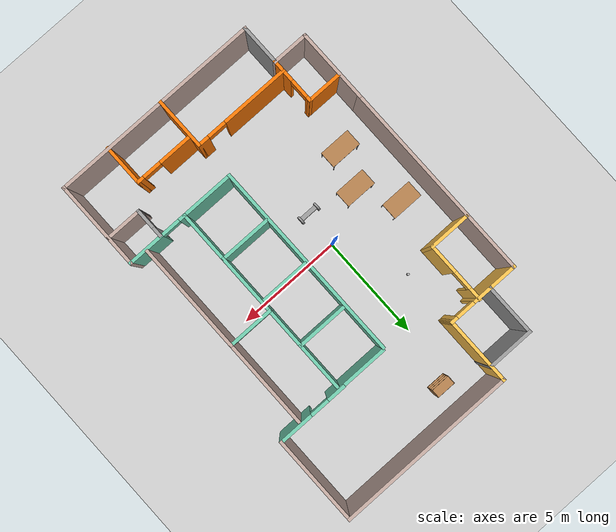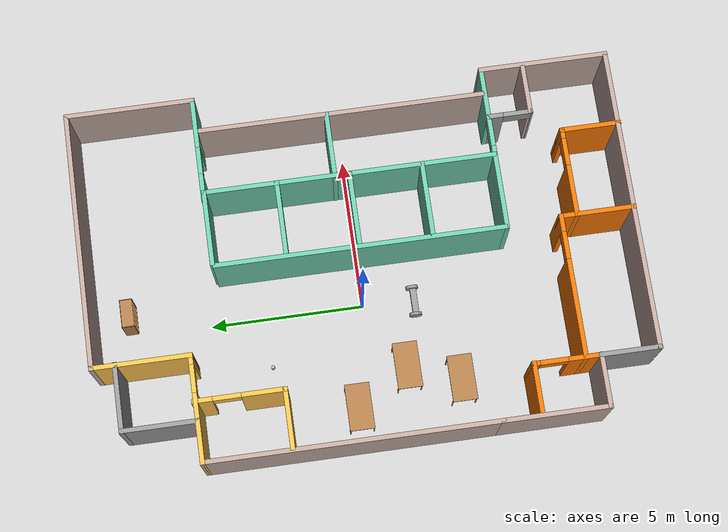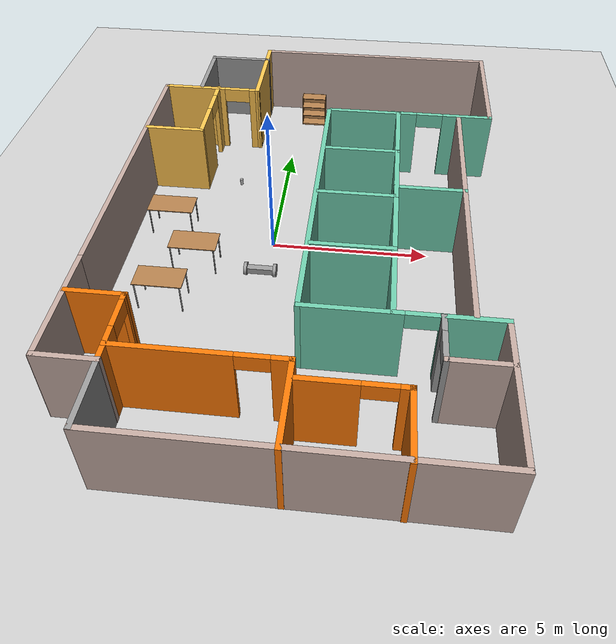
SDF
<sdf version="1.7">
 <world name="default">
  <light name="sun" type="directional">
   <pose>0 0 10 0 -0 0</pose>
   <diffuse>0.8 0.8 0.8 1</diffuse>
   <specular>0.2 0.2 0.2 1</specular>
   <attenuation>
    <range>1000</range>
    <constant>0.9</constant>
    <linear>0.01</linear>
    <quadratic>0.001</quadratic>
   </attenuation>
   <direction>-0.5 0.1 -0.9</direction>
   <spot><inner_angle>0</inner_angle><outer_angle>0</outer_angle><falloff>0</falloff></spot>
  </light>
  <model name="ground_plane">
   <static>1</static>
   <link name="link">
    <collision name="collision">
     <geometry><plane><normal>0 0 1</normal><size>100 100</size></plane></geometry>
     <surface>
      <contact><collide_bitmask>65535</collide_bitmask></contact>
      <friction><ode><mu>100</mu><mu2>50</mu2></ode></friction>
     </surface>
    </collision>
    <visual name="visual">
     <cast_shadows>0</cast_shadows>
     <geometry><plane><normal>0 0 1</normal><size>100 100</size></plane></geometry>
     <material>
      <script><uri>file://media/materials/scripts/gazebo.material</uri><name>Gazebo/Grey</name></script>
     </material>
    </visual>
   </link>
  </model>
  <gravity>0 0 -9.8</gravity>
  <magnetic_field>6e-06 2.3e-05 -4.2e-05</magnetic_field>
  <atmosphere type="adiabatic"/>
  <physics type="ode">
   <max_step_size>0.001</max_step_size>
   <real_time_factor>1</real_time_factor>
   <real_time_update_rate>1000</real_time_update_rate>
  </physics>
  <scene><ambient>0.4 0.4 0.4 1</ambient><background>0.7 0.7 0.7 1</background><shadows>1</shadows></scene>
  <audio><device>default</device></audio>
  <spherical_coordinates>
   <surface_model>EARTH_WGS84</surface_model>
   <latitude_deg>0</latitude_deg>
   <longitude_deg>0</longitude_deg>
   <elevation>0</elevation>
   <heading_deg>0</heading_deg>
  </spherical_coordinates>
  <model name="mybuilding">
   <pose>1.1462 -0.112296 0 0 -0 0</pose>
   <link name="Wall_123">
    <collision name="Wall_123_Collision">
     <geometry><box><size>5.25 0.15 2.5</size></box></geometry>
     <pose>0 0 1.25 0 -0 0</pose>
    </collision>
    <visual name="Wall_123_Visual">
     <pose>0 0 1.25 0 -0 0</pose>
     <geometry><box><size>5.25 0.15 2.5</size></box></geometry>
     <material>
      <script><uri>file://media/materials/scripts/gazebo.material</uri><name>Gazebo/Grey</name></script>
      <ambient>0.760784 0.662745 0.627451 1</ambient>
     </material>
     <meta><layer>0</layer></meta>
    </visual>
    <pose>4.79444 -2.06703 0 0 -0 1.5708</pose>
   </link>
   <link name="Wall_125">
    <collision name="Wall_125_Collision">
     <geometry><box><size>2.25 0.15 2.5</size></box></geometry>
     <pose>0 0 1.25 0 -0 0</pose>
    </collision>
    <visual name="Wall_125_Visual">
     <pose>0 0 1.25 0 -0 0</pose>
     <geometry><box><size>2.25 0.15 2.5</size></box></geometry>
     <material>
      <script><uri>file://media/materials/scripts/gazebo.material</uri><name>Gazebo/Grey</name></script>
      <ambient>0.435294 0.796078 0.67451 1</ambient>
     </material>
     <meta><layer>0</layer></meta>
    </visual>
    <pose>3.74444 0.482967 0 0 -0 3.14159</pose>
   </link>
   <link name="Wall_127">
    <collision name="Wall_127_Collision">
     <geometry><box><size>4.25 0.15 2.5</size></box></geometry>
     <pose>0 0 1.25 0 -0 0</pose>
    </collision>
    <visual name="Wall_127_Visual">
     <pose>0 0 1.25 0 -0 0</pose>
     <geometry><box><size>4.25 0.15 2.5</size></box></geometry>
     <material>
      <script><uri>file://media/materials/scripts/gazebo.material</uri><name>Gazebo/Grey</name></script>
      <ambient>0.760784 0.662745 0.627451 1</ambient>
     </material>
     <meta><layer>0</layer></meta>
    </visual>
    <pose>4.79444 2.53297 0 0 -0 1.5708</pose>
   </link>
   <link name="Wall_129">
    <collision name="Wall_129_Collision">
     <geometry><box><size>4.25 0.15 2.5</size></box></geometry>
     <pose>0 0 1.25 0 -0 0</pose>
    </collision>
    <visual name="Wall_129_Visual">
     <pose>0 0 1.25 0 -0 0</pose>
     <geometry><box><size>4.25 0.15 2.5</size></box></geometry>
     <material>
      <script><uri>file://media/materials/scripts/gazebo.material</uri><name>Gazebo/Grey</name></script>
      <ambient>0.760784 0.662745 0.627451 1</ambient>
     </material>
     <meta><layer>0</layer></meta>
    </visual>
    <pose>5.86525 6.78658 0 0 -0 1.5708</pose>
   </link>
   <link name="Wall_130">
    <collision name="Wall_130_Collision">
     <geometry><box><size>8.5 0.15 2.5</size></box></geometry>
     <pose>0 0 1.25 0 -0 0</pose>
    </collision>
    <visual name="Wall_130_Visual">
     <pose>0 0 1.25 0 -0 0</pose>
     <geometry><box><size>8.5 0.15 2.5</size></box></geometry>
     <material>
      <script><uri>file://media/materials/scripts/gazebo.material</uri><name>Gazebo/Grey</name></script>
      <ambient>0.760784 0.662745 0.627451 1</ambient>
     </material>
     <meta><layer>0</layer></meta>
    </visual>
    <pose>1.69025 8.83658 0 0 -0 3.14159</pose>
   </link>
   <link name="Wall_131">
    <collision name="Wall_131_Collision">
     <geometry><box><size>3.25 0.15 2.5</size></box></geometry>
     <pose>0 0 1.25 0 -0 0</pose>
    </collision>
    <visual name="Wall_131_Visual">
     <pose>0 0 1.25 0 -0 0</pose>
     <geometry><box><size>3.25 0.15 2.5</size></box></geometry>
     <material>
      <script><uri>file://media/materials/scripts/gazebo.material</uri><name>Gazebo/Grey</name></script>
      <ambient>1 0.764706 0.305882 1</ambient>
     </material>
     <meta><layer>0</layer></meta>
    </visual>
    <pose>-2.48475 7.28658 0 0 -0 -1.5708</pose>
   </link>
   <link name="Wall_136">
    <collision name="Wall_136_Collision">
     <geometry><box><size>9.49958 0.15 2.5</size></box></geometry>
     <pose>0 0 1.25 0 -0 0</pose>
    </collision>
    <visual name="Wall_136_Visual">
     <pose>0 0 1.25 0 -0 0</pose>
     <geometry><box><size>9.49958 0.15 2.5</size></box></geometry>
     <material>
      <script><uri>file://media/materials/scripts/gazebo.material</uri><name>Gazebo/Grey</name></script>
      <ambient>0.760784 0.662745 0.627451 1</ambient>
     </material>
     <meta><layer>0</layer></meta>
    </visual>
    <pose>-5.86518 1.06458 0 0 -0 1.5708</pose>
   </link>
   <link name="Wall_138">
    <pose>-4.17497 5.73808 0 0 -0 3.14071</pose>
    <visual name="Wall_138_Visual_0">
     <pose>-1.57735 0 1.25 0 -0 0</pose>
     <geometry><box><size>0.375734 0.15 2.5</size></box></geometry>
     <material>
      <script><uri>file://media/materials/scripts/gazebo.material</uri><name>Gazebo/Grey</name></script>
      <ambient>1 0.764706 0.305882 1</ambient>
     </material>
     <meta><layer>0</layer></meta>
    </visual>
    <collision name="Wall_138_Collision_0">
     <geometry><box><size>0.375734 0.15 2.5</size></box></geometry>
     <pose>-1.57735 0 1.25 0 -0 0</pose>
    </collision>
    <visual name="Wall_138_Visual_1">
     <pose>0.637867 0 1.25 0 -0 0</pose>
     <geometry><box><size>2.2547 0.15 2.5</size></box></geometry>
     <material>
      <script><uri>file://media/materials/scripts/gazebo.material</uri><name>Gazebo/Grey</name></script>
      <ambient>1 0.764706 0.305882 1</ambient>
     </material>
     <meta><layer>0</layer></meta>
    </visual>
    <collision name="Wall_138_Collision_1">
     <geometry><box><size>2.2547 0.15 2.5</size></box></geometry>
     <pose>0.637867 0 1.25 0 -0 0</pose>
    </collision>
    <visual name="Wall_138_Visual_2">
     <pose>-0.939484 0 2.25 0 -0 0</pose>
     <geometry><box><size>0.9 0.15 0.5</size></box></geometry>
     <material>
      <script><uri>file://media/materials/scripts/gazebo.material</uri><name>Gazebo/Grey</name></script>
      <ambient>1 0.764706 0.305882 1</ambient>
     </material>
     <meta><layer>0</layer></meta>
    </visual>
    <collision name="Wall_138_Collision_2">
     <geometry><box><size>0.9 0.15 0.5</size></box></geometry>
     <pose>-0.939484 0 2.25 0 -0 0</pose>
    </collision>
   </link>
   <link name="Wall_141">
    <collision name="Wall_141_Collision">
     <geometry><box><size>2.25 0.15 2.5</size></box></geometry>
     <pose>0 0 1.25 0 -0 0</pose>
    </collision>
    <visual name="Wall_141_Visual">
     <pose>0 0 1.25 0 -0 0</pose>
     <geometry><box><size>2.25 0.15 2.5</size></box></geometry>
     <material>
      <script><uri>file://media/materials/scripts/gazebo.material</uri><name>Gazebo/Grey</name></script>
      <ambient>1 1 1 1</ambient>
     </material>
     <meta><layer>0</layer></meta>
    </visual>
    <pose>-3.51661 8.10127 0 0 -0 3.14159</pose>
   </link>
   <link name="Wall_142">
    <collision name="Wall_142_Collision">
     <geometry><box><size>2.5 0.15 2.5</size></box></geometry>
     <pose>0 0 1.25 0 -0 0</pose>
    </collision>
    <visual name="Wall_142_Visual">
     <pose>0 0 1.25 0 -0 0</pose>
     <geometry><box><size>2.5 0.15 2.5</size></box></geometry>
     <material>
      <script><uri>file://media/materials/scripts/gazebo.material</uri><name>Gazebo/Grey</name></script>
      <ambient>1 1 1 1</ambient>
     </material>
     <meta><layer>0</layer></meta>
    </visual>
    <pose>-4.56661 6.92627 0 0 -0 -1.5708</pose>
   </link>
   <link name="Wall_144">
    <pose>-3.95132 4.36352 0 0 -0 -1.5708</pose>
    <visual name="Wall_144_Visual_0">
     <pose>-1.17446 0 1.25 0 -0 0</pose>
     <geometry><box><size>0.651089 0.15 2.5</size></box></geometry>
     <material>
      <script><uri>file://media/materials/scripts/gazebo.material</uri><name>Gazebo/Grey</name></script>
      <ambient>1 0.764706 0.305882 1</ambient>
     </material>
     <meta><layer>0</layer></meta>
    </visual>
    <collision name="Wall_144_Collision_0">
     <geometry><box><size>0.651089 0.15 2.5</size></box></geometry>
     <pose>-1.17446 0 1.25 0 -0 0</pose>
    </collision>
    <visual name="Wall_144_Visual_1">
     <pose>0.775545 0 1.25 0 -0 0</pose>
     <geometry><box><size>1.44891 0.15 2.5</size></box></geometry>
     <material>
      <script><uri>file://media/materials/scripts/gazebo.material</uri><name>Gazebo/Grey</name></script>
      <ambient>1 0.764706 0.305882 1</ambient>
     </material>
     <meta><layer>0</layer></meta>
    </visual>
    <collision name="Wall_144_Collision_1">
     <geometry><box><size>1.44891 0.15 2.5</size></box></geometry>
     <pose>0.775545 0 1.25 0 -0 0</pose>
    </collision>
    <visual name="Wall_144_Visual_2">
     <pose>-0.398911 0 2.25 0 -0 0</pose>
     <geometry><box><size>0.9 0.15 0.5</size></box></geometry>
     <material>
      <script><uri>file://media/materials/scripts/gazebo.material</uri><name>Gazebo/Grey</name></script>
      <ambient>1 0.764706 0.305882 1</ambient>
     </material>
     <meta><layer>0</layer></meta>
    </visual>
    <collision name="Wall_144_Collision_2">
     <geometry><box><size>0.9 0.15 0.5</size></box></geometry>
     <pose>-0.398911 0 2.25 0 -0 0</pose>
    </collision>
   </link>
   <link name="Wall_145">
    <collision name="Wall_145_Collision">
     <geometry><box><size>2 0.15 2.5</size></box></geometry>
     <pose>0 0 1.25 0 -0 0</pose>
    </collision>
    <visual name="Wall_145_Visual">
     <pose>0 0 1.25 0 -0 0</pose>
     <geometry><box><size>2 0.15 2.5</size></box></geometry>
     <material>
      <script><uri>file://media/materials/scripts/gazebo.material</uri><name>Gazebo/Grey</name></script>
      <ambient>1 0.764706 0.305882 1</ambient>
     </material>
     <meta><layer>0</layer></meta>
    </visual>
    <pose>-4.87632 2.93852 0 0 -0 3.14159</pose>
   </link>
   <link name="Wall_27">
    <collision name="Wall_27_Collision">
     <geometry><box><size>1.9915 0.15 2.5</size></box></geometry>
     <pose>0 0 1.25 0 -0 0</pose>
    </collision>
    <visual name="Wall_27_Visual">
     <pose>0 0 1.25 0 -0 0</pose>
     <geometry><box><size>1.9915 0.15 2.5</size></box></geometry>
     <material>
      <script><uri>file://media/materials/scripts/gazebo.material</uri><name>Gazebo/Grey</name></script>
      <ambient>1 1 1 1</ambient>
     </material>
     <meta><layer>0</layer></meta>
    </visual>
    <pose>-4.23475 -7.88117 0 0 -0 -1.5708</pose>
   </link>
   <link name="Wall_36">
    <pose>-4.23475 -5.89742 0 0 -0 1.5708</pose>
    <visual name="Wall_36_Visual_0">
     <pose>-0.580632 0 1.25 0 -0 0</pose>
     <geometry><box><size>1.11474 0.15 2.5</size></box></geometry>
     <material>
      <script><uri>file://media/materials/scripts/gazebo.material</uri><name>Gazebo/Grey</name></script>
      <ambient>0.996078 0.47451 0.0196078 1</ambient>
     </material>
     <meta><layer>0</layer></meta>
    </visual>
    <collision name="Wall_36_Collision_0">
     <geometry><box><size>1.11474 0.15 2.5</size></box></geometry>
     <pose>-0.580632 0 1.25 0 -0 0</pose>
    </collision>
    <visual name="Wall_36_Visual_1">
     <pose>1.00737 0 1.25 0 -0 0</pose>
     <geometry><box><size>0.261265 0.15 2.5</size></box></geometry>
     <material>
      <script><uri>file://media/materials/scripts/gazebo.material</uri><name>Gazebo/Grey</name></script>
      <ambient>0.996078 0.47451 0.0196078 1</ambient>
     </material>
     <meta><layer>0</layer></meta>
    </visual>
    <collision name="Wall_36_Collision_1">
     <geometry><box><size>0.261265 0.15 2.5</size></box></geometry>
     <pose>1.00737 0 1.25 0 -0 0</pose>
    </collision>
    <visual name="Wall_36_Visual_2">
     <pose>0.426735 0 2.25 0 -0 0</pose>
     <geometry><box><size>0.9 0.15 0.5</size></box></geometry>
     <material>
      <script><uri>file://media/materials/scripts/gazebo.material</uri><name>Gazebo/Grey</name></script>
      <ambient>0.996078 0.47451 0.0196078 1</ambient>
     </material>
     <meta><layer>0</layer></meta>
    </visual>
    <collision name="Wall_36_Collision_2">
     <geometry><box><size>0.9 0.15 0.5</size></box></geometry>
     <pose>0.426735 0 2.25 0 -0 0</pose>
    </collision>
   </link>
   <link name="Wall_41">
    <collision name="Wall_41_Collision">
     <geometry><box><size>1.75 0.15 2.5</size></box></geometry>
     <pose>0 0 1.25 0 -0 0</pose>
    </collision>
    <visual name="Wall_41_Visual">
     <pose>0 0 1.25 0 -0 0</pose>
     <geometry><box><size>1.75 0.15 2.5</size></box></geometry>
     <material>
      <script><uri>file://media/materials/scripts/gazebo.material</uri><name>Gazebo/Grey</name></script>
      <ambient>0.996078 0.47451 0.0196078 1</ambient>
     </material>
     <meta><layer>0</layer></meta>
    </visual>
    <pose>-5.02325 -4.83442 0 0 -0 3.14159</pose>
   </link>
   <link name="Wall_43">
    <collision name="Wall_43_Collision">
     <geometry><box><size>10 0.15 2.5</size></box></geometry>
     <pose>0 0 1.25 0 -0 0</pose>
    </collision>
    <visual name="Wall_43_Visual">
     <pose>0 0 1.25 0 -0 0</pose>
     <geometry><box><size>10 0.15 2.5</size></box></geometry>
     <material>
      <script><uri>file://media/materials/scripts/gazebo.material</uri><name>Gazebo/Grey</name></script>
      <ambient>0.760784 0.662745 0.627451 1</ambient>
     </material>
     <meta><layer>0</layer></meta>
    </visual>
    <pose>0.690251 -8.81342 0 0 -0 0</pose>
   </link>
   <link name="Wall_47">
    <pose>-1.93659 -6.46908 0 0 -0 0</pose>
    <visual name="Wall_47_Visual_0">
     <pose>-0.7455 0 1.25 0 -0 0</pose>
     <geometry><box><size>3.259 0.15 2.5</size></box></geometry>
     <material>
      <script><uri>file://media/materials/scripts/gazebo.material</uri><name>Gazebo/Grey</name></script>
      <ambient>0.996078 0.47451 0.0196078 1</ambient>
     </material>
     <meta><layer>0</layer></meta>
    </visual>
    <collision name="Wall_47_Collision_0">
     <geometry><box><size>3.259 0.15 2.5</size></box></geometry>
     <pose>-0.7455 0 1.25 0 -0 0</pose>
    </collision>
    <visual name="Wall_47_Visual_1">
     <pose>2.0795 0 1.25 0 -0 0</pose>
     <geometry><box><size>0.591 0.15 2.5</size></box></geometry>
     <material>
      <script><uri>file://media/materials/scripts/gazebo.material</uri><name>Gazebo/Grey</name></script>
      <ambient>0.996078 0.47451 0.0196078 1</ambient>
     </material>
     <meta><layer>0</layer></meta>
    </visual>
    <collision name="Wall_47_Collision_1">
     <geometry><box><size>0.591 0.15 2.5</size></box></geometry>
     <pose>2.0795 0 1.25 0 -0 0</pose>
    </collision>
    <visual name="Wall_47_Visual_2">
     <pose>1.334 0 2.25 0 -0 0</pose>
     <geometry><box><size>0.9 0.15 0.5</size></box></geometry>
     <material>
      <script><uri>file://media/materials/scripts/gazebo.material</uri><name>Gazebo/Grey</name></script>
      <ambient>0.996078 0.47451 0.0196078 1</ambient>
     </material>
     <meta><layer>0</layer></meta>
    </visual>
    <collision name="Wall_47_Collision_2">
     <geometry><box><size>0.9 0.15 0.5</size></box></geometry>
     <pose>1.334 0 2.25 0 -0 0</pose>
    </collision>
   </link>
   <link name="Wall_48">
    <collision name="Wall_48_Collision">
     <geometry><box><size>2.5 0.15 2.5</size></box></geometry>
     <pose>0 0 1.25 0 -0 0</pose>
    </collision>
    <visual name="Wall_48_Visual">
     <pose>0 0 1.25 0 -0 0</pose>
     <geometry><box><size>2.5 0.15 2.5</size></box></geometry>
     <material>
      <script><uri>file://media/materials/scripts/gazebo.material</uri><name>Gazebo/Grey</name></script>
      <ambient>0.996078 0.47451 0.0196078 1</ambient>
     </material>
     <meta><layer>0</layer></meta>
    </visual>
    <pose>0.36341 -7.64408 0 0 -0 -1.5708</pose>
   </link>
   <link name="Wall_52">
    <pose>1.78841 -6.98658 0 0 -0 0</pose>
    <visual name="Wall_52_Visual_0">
     <pose>-0.63525 0 1.25 0 -0 0</pose>
     <geometry><box><size>1.7295 0.15 2.5</size></box></geometry>
     <material>
      <script><uri>file://media/materials/scripts/gazebo.material</uri><name>Gazebo/Grey</name></script>
      <ambient>0.996078 0.47451 0.0196078 1</ambient>
     </material>
     <meta><layer>0</layer></meta>
    </visual>
    <collision name="Wall_52_Collision_0">
     <geometry><box><size>1.7295 0.15 2.5</size></box></geometry>
     <pose>-0.63525 0 1.25 0 -0 0</pose>
    </collision>
    <visual name="Wall_52_Visual_1">
     <pose>1.31475 0 1.25 0 -0 0</pose>
     <geometry><box><size>0.3705 0.15 2.5</size></box></geometry>
     <material>
      <script><uri>file://media/materials/scripts/gazebo.material</uri><name>Gazebo/Grey</name></script>
      <ambient>0.996078 0.47451 0.0196078 1</ambient>
     </material>
     <meta><layer>0</layer></meta>
    </visual>
    <collision name="Wall_52_Collision_1">
     <geometry><box><size>0.3705 0.15 2.5</size></box></geometry>
     <pose>1.31475 0 1.25 0 -0 0</pose>
    </collision>
    <visual name="Wall_52_Visual_2">
     <pose>0.6795 0 2.25 0 -0 0</pose>
     <geometry><box><size>0.9 0.15 0.5</size></box></geometry>
     <material>
      <script><uri>file://media/materials/scripts/gazebo.material</uri><name>Gazebo/Grey</name></script>
      <ambient>0.996078 0.47451 0.0196078 1</ambient>
     </material>
     <meta><layer>0</layer></meta>
    </visual>
    <collision name="Wall_52_Collision_2">
     <geometry><box><size>0.9 0.15 0.5</size></box></geometry>
     <pose>0.6795 0 2.25 0 -0 0</pose>
    </collision>
   </link>
   <link name="Wall_53">
    <collision name="Wall_53_Collision">
     <geometry><box><size>2 0.15 2.5</size></box></geometry>
     <pose>0 0 1.25 0 -0 0</pose>
    </collision>
    <visual name="Wall_53_Visual">
     <pose>0 0 1.25 0 -0 0</pose>
     <geometry><box><size>2 0.15 2.5</size></box></geometry>
     <material>
      <script><uri>file://media/materials/scripts/gazebo.material</uri><name>Gazebo/Grey</name></script>
      <ambient>0.996078 0.47451 0.0196078 1</ambient>
     </material>
     <meta><layer>0</layer></meta>
    </visual>
    <pose>3.21341 -7.91158 0 0 -0 -1.5708</pose>
   </link>
   <link name="Wall_55">
    <collision name="Wall_55_Collision">
     <geometry><box><size>4.25 0.15 2.5</size></box></geometry>
     <pose>0 0 1.25 0 -0 0</pose>
    </collision>
    <visual name="Wall_55_Visual">
     <pose>0 0 1.25 0 -0 0</pose>
     <geometry><box><size>4.25 0.15 2.5</size></box></geometry>
     <material>
      <script><uri>file://media/materials/scripts/gazebo.material</uri><name>Gazebo/Grey</name></script>
      <ambient>0.760784 0.662745 0.627451 1</ambient>
     </material>
     <meta><layer>0</layer></meta>
    </visual>
    <pose>5.61525 -6.76342 0 0 -0 1.5708</pose>
   </link>
   <link name="Wall_56">
    <pose>2.94025 -4.71342 0 0 -0 3.14159</pose>
    <visual name="Wall_56_Visual_0">
     <pose>-1.85364 0 1.25 0 -0 0</pose>
     <geometry><box><size>1.79272 0.15 2.5</size></box></geometry>
     <material>
      <script><uri>file://media/materials/scripts/gazebo.material</uri><name>Gazebo/Grey</name></script>
      <ambient>0.435294 0.796078 0.67451 1</ambient>
     </material>
     <meta><layer>0</layer></meta>
    </visual>
    <collision name="Wall_56_Collision_0">
     <geometry><box><size>1.79272 0.15 2.5</size></box></geometry>
     <pose>-1.85364 0 1.25 0 -0 0</pose>
    </collision>
    <visual name="Wall_56_Visual_1">
     <pose>1.34636 0 1.25 0 -0 0</pose>
     <geometry><box><size>2.80728 0.15 2.5</size></box></geometry>
     <material>
      <script><uri>file://media/materials/scripts/gazebo.material</uri><name>Gazebo/Grey</name></script>
      <ambient>0.435294 0.796078 0.67451 1</ambient>
     </material>
     <meta><layer>0</layer></meta>
    </visual>
    <collision name="Wall_56_Collision_1">
     <geometry><box><size>2.80728 0.15 2.5</size></box></geometry>
     <pose>1.34636 0 1.25 0 -0 0</pose>
    </collision>
    <visual name="Wall_56_Visual_2">
     <pose>-0.507283 0 2.25 0 -0 0</pose>
     <geometry><box><size>0.9 0.15 0.5</size></box></geometry>
     <material>
      <script><uri>file://media/materials/scripts/gazebo.material</uri><name>Gazebo/Grey</name></script>
      <ambient>0.435294 0.796078 0.67451 1</ambient>
     </material>
     <meta><layer>0</layer></meta>
    </visual>
    <collision name="Wall_56_Collision_2">
     <geometry><box><size>0.9 0.15 0.5</size></box></geometry>
     <pose>-0.507283 0 2.25 0 -0 0</pose>
    </collision>
   </link>
   <link name="Wall_58">
    <collision name="Wall_58_Collision">
     <geometry><box><size>1.75 0.15 2.5</size></box></geometry>
     <pose>0 0 1.25 0 -0 0</pose>
    </collision>
    <visual name="Wall_58_Visual">
     <pose>0 0 1.25 0 -0 0</pose>
     <geometry><box><size>1.75 0.15 2.5</size></box></geometry>
     <material>
      <script><uri>file://media/materials/scripts/gazebo.material</uri><name>Gazebo/Grey</name></script>
      <ambient>0.760784 0.662745 0.627451 1</ambient>
     </material>
     <meta><layer>0</layer></meta>
    </visual>
    <pose>4.79591 -6.07808 0 0 -0 3.14159</pose>
   </link>
   <link name="Wall_59">
    <pose>3.98441 -5.40308 0 0 -0 1.5708</pose>
    <visual name="Wall_59_Visual_0">
     <pose>-0.719 0 1.25 0 -0 0</pose>
     <geometry><box><size>0.062 0.15 2.5</size></box></geometry>
     <material>
      <script><uri>file://media/materials/scripts/gazebo.material</uri><name>Gazebo/Grey</name></script>
      <ambient>1 1 1 1</ambient>
     </material>
     <meta><layer>0</layer></meta>
    </visual>
    <collision name="Wall_59_Collision_0">
     <geometry><box><size>0.062 0.15 2.5</size></box></geometry>
     <pose>-0.719 0 1.25 0 -0 0</pose>
    </collision>
    <visual name="Wall_59_Visual_1">
     <pose>0.481 0 1.25 0 -0 0</pose>
     <geometry><box><size>0.538 0.15 2.5</size></box></geometry>
     <material>
      <script><uri>file://media/materials/scripts/gazebo.material</uri><name>Gazebo/Grey</name></script>
      <ambient>1 1 1 1</ambient>
     </material>
     <meta><layer>0</layer></meta>
    </visual>
    <collision name="Wall_59_Collision_1">
     <geometry><box><size>0.538 0.15 2.5</size></box></geometry>
     <pose>0.481 0 1.25 0 -0 0</pose>
    </collision>
    <visual name="Wall_59_Visual_2">
     <pose>-0.238 0 2.25 0 -0 0</pose>
     <geometry><box><size>0.9 0.15 0.5</size></box></geometry>
     <material>
      <script><uri>file://media/materials/scripts/gazebo.material</uri><name>Gazebo/Grey</name></script>
      <ambient>1 1 1 1</ambient>
     </material>
     <meta><layer>0</layer></meta>
    </visual>
    <collision name="Wall_59_Collision_2">
     <geometry><box><size>0.9 0.15 0.5</size></box></geometry>
     <pose>-0.238 0 2.25 0 -0 0</pose>
    </collision>
   </link>
   <link name="Wall_6">
    <collision name="Wall_6_Collision">
     <geometry><box><size>3.5 0.15 2.5</size></box></geometry>
     <pose>0 0 1.25 0 -0 0</pose>
    </collision>
    <visual name="Wall_6_Visual">
     <pose>0 0 1.25 0 -0 0</pose>
     <geometry><box><size>3.5 0.15 2.5</size></box></geometry>
     <material>
      <script><uri>file://media/materials/scripts/gazebo.material</uri><name>Gazebo/Grey</name></script>
      <ambient>0.760784 0.662745 0.627451 1</ambient>
     </material>
     <meta><layer>0</layer></meta>
    </visual>
    <pose>-5.86518 -5.28542 0 0 -0 -1.5708</pose>
   </link>
   <link name="Wall_73">
    <collision name="Wall_73_Collision">
     <geometry><box><size>2.5 0.15 2.5</size></box></geometry>
     <pose>0 0 1.25 0 -0 0</pose>
    </collision>
    <visual name="Wall_73_Visual">
     <pose>0 0 1.25 0 -0 0</pose>
     <geometry><box><size>2.5 0.15 2.5</size></box></geometry>
     <material>
      <script><uri>file://media/materials/scripts/gazebo.material</uri><name>Gazebo/Grey</name></script>
      <ambient>0.435294 0.796078 0.67451 1</ambient>
     </material>
     <meta><layer>0</layer></meta>
    </visual>
    <pose>2.70558 -3.51332 0 0 -0 1.5708</pose>
   </link>
   <link name="Wall_74">
    <collision name="Wall_74_Collision">
     <geometry><box><size>2.5 0.15 2.5</size></box></geometry>
     <pose>0 0 1.25 0 -0 0</pose>
    </collision>
    <visual name="Wall_74_Visual">
     <pose>0 0 1.25 0 -0 0</pose>
     <geometry><box><size>2.5 0.15 2.5</size></box></geometry>
     <material>
      <script><uri>file://media/materials/scripts/gazebo.material</uri><name>Gazebo/Grey</name></script>
      <ambient>0.435294 0.796078 0.67451 1</ambient>
     </material>
     <meta><layer>0</layer></meta>
    </visual>
    <pose>1.53058 -2.33832 0 0 -0 3.14159</pose>
   </link>
   <link name="Wall_76">
    <collision name="Wall_76_Collision">
     <geometry><box><size>2.5 0.15 2.5</size></box></geometry>
     <pose>0 0 1.25 0 -0 0</pose>
    </collision>
    <visual name="Wall_76_Visual">
     <pose>0 0 1.25 0 -0 0</pose>
     <geometry><box><size>2.5 0.15 2.5</size></box></geometry>
     <material>
      <script><uri>file://media/materials/scripts/gazebo.material</uri><name>Gazebo/Grey</name></script>
      <ambient>0.435294 0.796078 0.67451 1</ambient>
     </material>
     <meta><layer>0</layer></meta>
    </visual>
    <pose>2.70558 -1.16332 0 0 -0 1.5708</pose>
   </link>
   <link name="Wall_77">
    <collision name="Wall_77_Collision">
     <geometry><box><size>2.5 0.15 2.5</size></box></geometry>
     <pose>0 0 1.25 0 -0 0</pose>
    </collision>
    <visual name="Wall_77_Visual">
     <pose>0 0 1.25 0 -0 0</pose>
     <geometry><box><size>2.5 0.15 2.5</size></box></geometry>
     <material>
      <script><uri>file://media/materials/scripts/gazebo.material</uri><name>Gazebo/Grey</name></script>
      <ambient>0.435294 0.796078 0.67451 1</ambient>
     </material>
     <meta><layer>0</layer></meta>
    </visual>
    <pose>1.53058 0.011678 0 0 -0 3.14159</pose>
   </link>
   <link name="Wall_79">
    <collision name="Wall_79_Collision">
     <geometry><box><size>2.5 0.15 2.5</size></box></geometry>
     <pose>0 0 1.25 0 -0 0</pose>
    </collision>
    <visual name="Wall_79_Visual">
     <pose>0 0 1.25 0 -0 0</pose>
     <geometry><box><size>2.5 0.15 2.5</size></box></geometry>
     <material>
      <script><uri>file://media/materials/scripts/gazebo.material</uri><name>Gazebo/Grey</name></script>
      <ambient>0.435294 0.796078 0.67451 1</ambient>
     </material>
     <meta><layer>0</layer></meta>
    </visual>
    <pose>2.70558 1.18668 0 0 -0 1.5708</pose>
   </link>
   <link name="Wall_8">
    <collision name="Wall_8_Collision">
     <geometry><box><size>1.78043 0.15 2.5</size></box></geometry>
     <pose>0 0 1.25 0 -0 0</pose>
    </collision>
    <visual name="Wall_8_Visual">
     <pose>0 0 1.25 0 -0 0</pose>
     <geometry><box><size>1.78043 0.15 2.5</size></box></geometry>
     <material>
      <script><uri>file://media/materials/scripts/gazebo.material</uri><name>Gazebo/Grey</name></script>
      <ambient>0.760784 0.662745 0.627451 1</ambient>
     </material>
     <meta><layer>0</layer></meta>
    </visual>
    <pose>-5.04127 -6.96042 0 0 -0 0</pose>
   </link>
   <link name="Wall_82">
    <collision name="Wall_82_Collision">
     <geometry><box><size>2.5 0.15 2.5</size></box></geometry>
     <pose>0 0 1.25 0 -0 0</pose>
    </collision>
    <visual name="Wall_82_Visual">
     <pose>0 0 1.25 0 -0 0</pose>
     <geometry><box><size>2.5 0.15 2.5</size></box></geometry>
     <material>
      <script><uri>file://media/materials/scripts/gazebo.material</uri><name>Gazebo/Grey</name></script>
      <ambient>0.435294 0.796078 0.67451 1</ambient>
     </material>
     <meta><layer>0</layer></meta>
    </visual>
    <pose>1.53058 2.36168 0 0 -0 3.14159</pose>
   </link>
   <link name="Wall_85">
    <collision name="Wall_85_Collision">
     <geometry><box><size>2.5 0.15 2.5</size></box></geometry>
     <pose>0 0 1.25 0 -0 0</pose>
    </collision>
    <visual name="Wall_85_Visual">
     <pose>0 0 1.25 0 -0 0</pose>
     <geometry><box><size>2.5 0.15 2.5</size></box></geometry>
     <material>
      <script><uri>file://media/materials/scripts/gazebo.material</uri><name>Gazebo/Grey</name></script>
      <ambient>0.435294 0.796078 0.67451 1</ambient>
     </material>
     <meta><layer>0</layer></meta>
    </visual>
    <pose>2.70558 3.53668 0 0 -0 1.5708</pose>
   </link>
   <link name="Wall_86">
    <collision name="Wall_86_Collision">
     <geometry><box><size>2.5 0.15 2.5</size></box></geometry>
     <pose>0 0 1.25 0 -0 0</pose>
    </collision>
    <visual name="Wall_86_Visual">
     <pose>0 0 1.25 0 -0 0</pose>
     <geometry><box><size>2.5 0.15 2.5</size></box></geometry>
     <material>
      <script><uri>file://media/materials/scripts/gazebo.material</uri><name>Gazebo/Grey</name></script>
      <ambient>0.435294 0.796078 0.67451 1</ambient>
     </material>
     <meta><layer>0</layer></meta>
    </visual>
    <pose>1.53058 4.71168 0 0 -0 3.14159</pose>
   </link>
   <link name="Wall_88">
    <collision name="Wall_88_Collision">
     <geometry><box><size>9.5 0.15 2.5</size></box></geometry>
     <pose>0 0 1.25 0 -0 0</pose>
    </collision>
    <visual name="Wall_88_Visual">
     <pose>0 0 1.25 0 -0 0</pose>
     <geometry><box><size>9.5 0.15 2.5</size></box></geometry>
     <material>
      <script><uri>file://media/materials/scripts/gazebo.material</uri><name>Gazebo/Grey</name></script>
      <ambient>0.435294 0.796078 0.67451 1</ambient>
     </material>
     <meta><layer>0</layer></meta>
    </visual>
    <pose>0.265251 -0.038418 0 0 -0 1.5708</pose>
   </link>
   <link name="Wall_93">
    <pose>4.19025 4.73658 0 0 -0 3.14159</pose>
    <visual name="Wall_93_Visual_0">
     <pose>-0.901489 0 1.25 0 -0 0</pose>
     <geometry><box><size>1.69702 0.15 2.5</size></box></geometry>
     <material>
      <script><uri>file://media/materials/scripts/gazebo.material</uri><name>Gazebo/Grey</name></script>
      <ambient>0.435294 0.796078 0.67451 1</ambient>
     </material>
     <meta><layer>0</layer></meta>
    </visual>
    <collision name="Wall_93_Collision_0">
     <geometry><box><size>1.69702 0.15 2.5</size></box></geometry>
     <pose>-0.901489 0 1.25 0 -0 0</pose>
    </collision>
    <visual name="Wall_93_Visual_1">
     <pose>1.29851 0 1.25 0 -0 0</pose>
     <geometry><box><size>0.902978 0.15 2.5</size></box></geometry>
     <material>
      <script><uri>file://media/materials/scripts/gazebo.material</uri><name>Gazebo/Grey</name></script>
      <ambient>0.435294 0.796078 0.67451 1</ambient>
     </material>
     <meta><layer>0</layer></meta>
    </visual>
    <collision name="Wall_93_Collision_1">
     <geometry><box><size>0.902978 0.15 2.5</size></box></geometry>
     <pose>1.29851 0 1.25 0 -0 0</pose>
    </collision>
    <visual name="Wall_93_Visual_2">
     <pose>0.397022 0 2.25 0 -0 0</pose>
     <geometry><box><size>0.9 0.15 0.5</size></box></geometry>
     <material>
      <script><uri>file://media/materials/scripts/gazebo.material</uri><name>Gazebo/Grey</name></script>
      <ambient>0.435294 0.796078 0.67451 1</ambient>
     </material>
     <meta><layer>0</layer></meta>
    </visual>
    <collision name="Wall_93_Collision_2">
     <geometry><box><size>0.9 0.15 0.5</size></box></geometry>
     <pose>0.397022 0 2.25 0 -0 0</pose>
    </collision>
   </link>
   <static>1</static>
  </model>
  <model name="table">
   <static>1</static>
   <link name="link">
    <collision name="surface">
     <pose>0 0 1 0 -0 0</pose>
     <geometry><box><size>1.5 0.8 0.03</size></box></geometry>
     <surface><friction><ode><mu>0.6</mu><mu2>0.6</mu2></ode></friction></surface>
    </collision>
    <visual name="visual1">
     <pose>0 0 1 0 -0 0</pose>
     <geometry><box><size>1.5 0.8 0.03</size></box></geometry>
     <material>
      <script><uri>file://media/materials/scripts/gazebo.material</uri><name>Gazebo/Wood</name></script>
     </material>
    </visual>
    <collision name="front_left_leg">
     <pose>0.68 0.38 0.5 0 -0 0</pose>
     <geometry><cylinder><radius>0.02</radius><length>1</length></cylinder></geometry>
    </collision>
    <visual name="front_left_leg">
     <pose>0.68 0.38 0.5 0 -0 0</pose>
     <geometry><cylinder><radius>0.02</radius><length>1</length></cylinder></geometry>
     <material>
      <script><uri>file://media/materials/scripts/gazebo.material</uri><name>Gazebo/Grey</name></script>
     </material>
    </visual>
    <collision name="front_right_leg">
     <pose>0.68 -0.38 0.5 0 -0 0</pose>
     <geometry><cylinder><radius>0.02</radius><length>1</length></cylinder></geometry>
    </collision>
    <visual name="front_right_leg">
     <pose>0.68 -0.38 0.5 0 -0 0</pose>
     <geometry><cylinder><radius>0.02</radius><length>1</length></cylinder></geometry>
     <material>
      <script><uri>file://media/materials/scripts/gazebo.material</uri><name>Gazebo/Grey</name></script>
     </material>
    </visual>
    <collision name="back_right_leg">
     <pose>-0.68 -0.38 0.5 0 -0 0</pose>
     <geometry><cylinder><radius>0.02</radius><length>1</length></cylinder></geometry>
    </collision>
    <visual name="back_right_leg">
     <pose>-0.68 -0.38 0.5 0 -0 0</pose>
     <geometry><cylinder><radius>0.02</radius><length>1</length></cylinder></geometry>
     <material>
      <script><uri>file://media/materials/scripts/gazebo.material</uri><name>Gazebo/Grey</name></script>
     </material>
    </visual>
    <collision name="back_left_leg">
     <pose>-0.68 0.38 0.5 0 -0 0</pose>
     <geometry><cylinder><radius>0.02</radius><length>1</length></cylinder></geometry>
    </collision>
    <visual name="back_left_leg">
     <pose>-0.68 0.38 0.5 0 -0 0</pose>
     <geometry><cylinder><radius>0.02</radius><length>1</length></cylinder></geometry>
     <material>
      <script><uri>file://media/materials/scripts/gazebo.material</uri><name>Gazebo/Grey</name></script>
     </material>
    </visual>
   </link>
   <pose>-3.42213 0.583745 0 0 -0 0</pose>
  </model>
  <model name="table_0">
   <static>1</static>
   <link name="link">
    <collision name="surface">
     <pose>0 0 1 0 -0 0</pose>
     <geometry><box><size>1.5 0.8 0.03</size></box></geometry>
     <surface><friction><ode><mu>0.6</mu><mu2>0.6</mu2></ode></friction></surface>
    </collision>
    <visual name="visual1">
     <pose>0 0 1 0 -0 0</pose>
     <geometry><box><size>1.5 0.8 0.03</size></box></geometry>
     <material>
      <script><uri>file://media/materials/scripts/gazebo.material</uri><name>Gazebo/Wood</name></script>
     </material>
    </visual>
    <collision name="front_left_leg">
     <pose>0.68 0.38 0.5 0 -0 0</pose>
     <geometry><cylinder><radius>0.02</radius><length>1</length></cylinder></geometry>
    </collision>
    <visual name="front_left_leg">
     <pose>0.68 0.38 0.5 0 -0 0</pose>
     <geometry><cylinder><radius>0.02</radius><length>1</length></cylinder></geometry>
     <material>
      <script><uri>file://media/materials/scripts/gazebo.material</uri><name>Gazebo/Grey</name></script>
     </material>
    </visual>
    <collision name="front_right_leg">
     <pose>0.68 -0.38 0.5 0 -0 0</pose>
     <geometry><cylinder><radius>0.02</radius><length>1</length></cylinder></geometry>
    </collision>
    <visual name="front_right_leg">
     <pose>0.68 -0.38 0.5 0 -0 0</pose>
     <geometry><cylinder><radius>0.02</radius><length>1</length></cylinder></geometry>
     <material>
      <script><uri>file://media/materials/scripts/gazebo.material</uri><name>Gazebo/Grey</name></script>
     </material>
    </visual>
    <collision name="back_right_leg">
     <pose>-0.68 -0.38 0.5 0 -0 0</pose>
     <geometry><cylinder><radius>0.02</radius><length>1</length></cylinder></geometry>
    </collision>
    <visual name="back_right_leg">
     <pose>-0.68 -0.38 0.5 0 -0 0</pose>
     <geometry><cylinder><radius>0.02</radius><length>1</length></cylinder></geometry>
     <material>
      <script><uri>file://media/materials/scripts/gazebo.material</uri><name>Gazebo/Grey</name></script>
     </material>
    </visual>
    <collision name="back_left_leg">
     <pose>-0.68 0.38 0.5 0 -0 0</pose>
     <geometry><cylinder><radius>0.02</radius><length>1</length></cylinder></geometry>
    </collision>
    <visual name="back_left_leg">
     <pose>-0.68 0.38 0.5 0 -0 0</pose>
     <geometry><cylinder><radius>0.02</radius><length>1</length></cylinder></geometry>
     <material>
      <script><uri>file://media/materials/scripts/gazebo.material</uri><name>Gazebo/Grey</name></script>
     </material>
    </visual>
   </link>
   <pose>-2.29771 -1.11789 0 0 -0 0</pose>
  </model>
  <model name="table_1">
   <static>1</static>
   <link name="link">
    <collision name="surface">
     <pose>0 0 1 0 -0 0</pose>
     <geometry><box><size>1.5 0.8 0.03</size></box></geometry>
     <surface><friction><ode><mu>0.6</mu><mu2>0.6</mu2></ode></friction></surface>
    </collision>
    <visual name="visual1">
     <pose>0 0 1 0 -0 0</pose>
     <geometry><box><size>1.5 0.8 0.03</size></box></geometry>
     <material>
      <script><uri>file://media/materials/scripts/gazebo.material</uri><name>Gazebo/Wood</name></script>
     </material>
    </visual>
    <collision name="front_left_leg">
     <pose>0.68 0.38 0.5 0 -0 0</pose>
     <geometry><cylinder><radius>0.02</radius><length>1</length></cylinder></geometry>
    </collision>
    <visual name="front_left_leg">
     <pose>0.68 0.38 0.5 0 -0 0</pose>
     <geometry><cylinder><radius>0.02</radius><length>1</length></cylinder></geometry>
     <material>
      <script><uri>file://media/materials/scripts/gazebo.material</uri><name>Gazebo/Grey</name></script>
     </material>
    </visual>
    <collision name="front_right_leg">
     <pose>0.68 -0.38 0.5 0 -0 0</pose>
     <geometry><cylinder><radius>0.02</radius><length>1</length></cylinder></geometry>
    </collision>
    <visual name="front_right_leg">
     <pose>0.68 -0.38 0.5 0 -0 0</pose>
     <geometry><cylinder><radius>0.02</radius><length>1</length></cylinder></geometry>
     <material>
      <script><uri>file://media/materials/scripts/gazebo.material</uri><name>Gazebo/Grey</name></script>
     </material>
    </visual>
    <collision name="back_right_leg">
     <pose>-0.68 -0.38 0.5 0 -0 0</pose>
     <geometry><cylinder><radius>0.02</radius><length>1</length></cylinder></geometry>
    </collision>
    <visual name="back_right_leg">
     <pose>-0.68 -0.38 0.5 0 -0 0</pose>
     <geometry><cylinder><radius>0.02</radius><length>1</length></cylinder></geometry>
     <material>
      <script><uri>file://media/materials/scripts/gazebo.material</uri><name>Gazebo/Grey</name></script>
     </material>
    </visual>
    <collision name="back_left_leg">
     <pose>-0.68 0.38 0.5 0 -0 0</pose>
     <geometry><cylinder><radius>0.02</radius><length>1</length></cylinder></geometry>
    </collision>
    <visual name="back_left_leg">
     <pose>-0.68 0.38 0.5 0 -0 0</pose>
     <geometry><cylinder><radius>0.02</radius><length>1</length></cylinder></geometry>
     <material>
      <script><uri>file://media/materials/scripts/gazebo.material</uri><name>Gazebo/Grey</name></script>
     </material>
    </visual>
   </link>
   <pose>-2.94647 -2.79257 0 0 -0 0</pose>
  </model>
  <model name="bookshelf">
   <static>1</static>
   <link name="link">
    <inertial><mass>1</mass></inertial>
    <collision name="back">
     <pose>0 0.005 0.6 0 -0 0</pose>
     <geometry><box><size>0.9 0.01 1.2</size></box></geometry>
    </collision>
    <visual name="visual1">
     <pose>0 0.005 0.6 0 -0 0</pose>
     <geometry><box><size>0.9 0.01 1.2</size></box></geometry>
     <material>
      <script><uri>file://media/materials/scripts/gazebo.material</uri><name>Gazebo/Wood</name></script>
     </material>
    </visual>
    <collision name="left_side">
     <pose>0.45 -0.195 0.6 0 -0 0</pose>
     <geometry><box><size>0.02 0.4 1.2</size></box></geometry>
    </collision>
    <visual name="visual2">
     <pose>0.45 -0.195 0.6 0 -0 0</pose>
     <geometry><box><size>0.02 0.4 1.2</size></box></geometry>
     <material>
      <script><uri>file://media/materials/scripts/gazebo.material</uri><name>Gazebo/Wood</name></script>
     </material>
    </visual>
    <collision name="right_side">
     <pose>-0.45 -0.195 0.6 0 -0 0</pose>
     <geometry><box><size>0.02 0.4 1.2</size></box></geometry>
    </collision>
    <visual name="visual3">
     <pose>-0.45 -0.195 0.6 0 -0 0</pose>
     <geometry><box><size>0.02 0.4 1.2</size></box></geometry>
     <material>
      <script><uri>file://media/materials/scripts/gazebo.material</uri><name>Gazebo/Wood</name></script>
     </material>
    </visual>
    <collision name="bottom">
     <pose>0 -0.195 0.03 0 -0 0</pose>
     <geometry><box><size>0.88 0.4 0.06</size></box></geometry>
    </collision>
    <visual name="visual4">
     <pose>0 -0.195 0.03 0 -0 0</pose>
     <geometry><box><size>0.88 0.4 0.06</size></box></geometry>
     <material>
      <script><uri>file://media/materials/scripts/gazebo.material</uri><name>Gazebo/Wood</name></script>
     </material>
    </visual>
    <collision name="top">
     <pose>0 -0.195 1.19 0 -0 0</pose>
     <geometry><box><size>0.88 0.4 0.02</size></box></geometry>
    </collision>
    <visual name="visual5">
     <pose>0 -0.195 1.19 0 -0 0</pose>
     <geometry><box><size>0.88 0.4 0.02</size></box></geometry>
     <material>
      <script><uri>file://media/materials/scripts/gazebo.material</uri><name>Gazebo/Wood</name></script>
     </material>
    </visual>
    <collision name="low_shelf">
     <pose>0 -0.195 0.43 0 -0 0</pose>
     <geometry><box><size>0.88 0.4 0.02</size></box></geometry>
    </collision>
    <visual name="visual6">
     <pose>0 -0.195 0.43 0 -0 0</pose>
     <geometry><box><size>0.88 0.4 0.02</size></box></geometry>
     <material>
      <script><uri>file://media/materials/scripts/gazebo.material</uri><name>Gazebo/Wood</name></script>
     </material>
    </visual>
    <collision name="high_shelf">
     <pose>0 -0.195 0.8 0 -0 0</pose>
     <geometry><box><size>0.88 0.4 0.02</size></box></geometry>
    </collision>
    <visual name="visual7">
     <pose>0 -0.195 0.8 0 -0 0</pose>
     <geometry><box><size>0.88 0.4 0.02</size></box></geometry>
     <material>
      <script><uri>file://media/materials/scripts/gazebo.material</uri><name>Gazebo/Wood</name></script>
     </material>
    </visual>
   </link>
   <pose>0.579849 7.77703 0 0 -0 0</pose>
  </model>
  <model name="beer">
   <link name="link">
    <pose>0 0 0.115 0 -0 0</pose>
    <inertial>
     <mass>0.39</mass>
     <inertia><ixx>0.00058</ixx><ixy>0</ixy><ixz>0</ixz><iyy>0.00058</iyy><iyz>0</iyz><izz>0.00019</izz></inertia>
    </inertial>
    <collision name="collision">
     <geometry><cylinder><radius>0.055</radius><length>0.23</length></cylinder></geometry>
    </collision>
    <visual name="visual">
     <geometry><cylinder><radius>0.055</radius><length>0.23</length></cylinder></geometry>
     <material>
      <script>
       <uri>model://beer/materials/scripts</uri>
       <uri>model://beer/materials/textures</uri>
       <name>Beer/Diffuse</name>
      </script>
     </material>
    </visual>
   </link>
   <pose>-1.61892 3.16597 -7e-06 -1e-06 -0 -2e-06</pose>
  </model>
  <model name="robot">
   <link name="link_1">
    <inertial>
     <mass>1</mass>
     <inertia>
      <ixx>0.166667</ixx>
      <ixy>0</ixy>
      <ixz>0</ixz>
      <iyy>0.166667</iyy>
      <iyz>0</iyz>
      <izz>0.166667</izz>
     </inertia>
    </inertial>
    <pose>2.6e-05 -0.013333 0 0 -0 0</pose>
    <visual name="visual">
     <geometry><box><size>0.8 0.2 0.2</size></box></geometry>
     <material>
      <lighting>1</lighting>
      <script><uri>file://media/materials/scripts/gazebo.material</uri><name>Gazebo/Grey</name></script>
      <shader type="pixel"><normal_map>__default__</normal_map></shader>
      <ambient>0.3 0.3 0.3 1</ambient>
      <diffuse>0.7 0.7 0.7 1</diffuse>
      <specular>0.01 0.01 0.01 1</specular>
      <emissive>0 0 0 1</emissive>
     </material>
    </visual>
    <collision name="collision">
     <geometry><box><size>0.8 0.2 0.2</size></box></geometry>
     <surface>
      <friction>
       <ode><mu>1</mu><mu2>1</mu2><fdir1>0 0 0</fdir1><slip1>0</slip1><slip2>0</slip2></ode>
       <torsional>
        <coefficient>1</coefficient>
        <patch_radius>0</patch_radius>
        <surface_radius>0</surface_radius>
        <use_patch_radius>1</use_patch_radius>
        <ode><slip>0</slip></ode>
       </torsional>
      </friction>
      <bounce><restitution_coefficient>0</restitution_coefficient><threshold>1e+06</threshold></bounce>
      <contact>
       <collide_without_contact>0</collide_without_contact>
       <collide_without_contact_bitmask>1</collide_without_contact_bitmask>
       <collide_bitmask>1</collide_bitmask>
       <ode>
        <soft_cfm>0</soft_cfm>
        <soft_erp>0.2</soft_erp>
        <kp>1e+13</kp>
        <kd>1</kd>
        <max_vel>0.01</max_vel>
        <min_depth>0</min_depth>
       </ode>
       <bullet>
        <split_impulse>1</split_impulse>
        <split_impulse_penetration_threshold>-0.01</split_impulse_penetration_threshold>
        <soft_cfm>0</soft_cfm>
        <soft_erp>0.2</soft_erp>
        <kp>1e+13</kp>
        <kd>1</kd>
       </bullet>
      </contact>
     </surface>
    </collision>
   </link>
   <link name="link_4_clone">
    <inertial>
     <mass>1</mass>
     <inertia><ixx>0.145833</ixx><ixy>0</ixy><ixz>0</ixz><iyy>0.145833</iyy><iyz>0</iyz><izz>0.125</izz></inertia>
    </inertial>
    <pose>0.450106 0.006667 0 0 -0 0</pose>
    <visual name="visual">
     <pose>0 0 0 0 1.57 0</pose>
     <geometry><cylinder><radius>0.2</radius><length>0.1</length></cylinder></geometry>
     <material>
      <lighting>1</lighting>
      <script><uri>file://media/materials/scripts/gazebo.material</uri><name>Gazebo/Grey</name></script>
      <shader type="pixel"><normal_map>__default__</normal_map></shader>
      <ambient>0.3 0.3 0.3 1</ambient>
      <diffuse>0.7 0.7 0.7 1</diffuse>
      <specular>0.01 0.01 0.01 1</specular>
      <emissive>0 0 0 1</emissive>
     </material>
    </visual>
    <collision name="collision">
     <geometry><cylinder><radius>0.2</radius><length>1</length></cylinder></geometry>
     <surface>
      <friction>
       <ode><mu>1</mu><mu2>1</mu2><fdir1>0 0 0</fdir1><slip1>0</slip1><slip2>0</slip2></ode>
       <torsional>
        <coefficient>1</coefficient>
        <patch_radius>0</patch_radius>
        <surface_radius>0</surface_radius>
        <use_patch_radius>1</use_patch_radius>
        <ode><slip>0</slip></ode>
       </torsional>
      </friction>
      <bounce><restitution_coefficient>0</restitution_coefficient><threshold>1e+06</threshold></bounce>
      <contact>
       <collide_without_contact>0</collide_without_contact>
       <collide_without_contact_bitmask>1</collide_without_contact_bitmask>
       <collide_bitmask>1</collide_bitmask>
       <ode>
        <soft_cfm>0</soft_cfm>
        <soft_erp>0.2</soft_erp>
        <kp>1e+13</kp>
        <kd>1</kd>
        <max_vel>0.01</max_vel>
        <min_depth>0</min_depth>
       </ode>
       <bullet>
        <split_impulse>1</split_impulse>
        <split_impulse_penetration_threshold>-0.01</split_impulse_penetration_threshold>
        <soft_cfm>0</soft_cfm>
        <soft_erp>0.2</soft_erp>
        <kp>1e+13</kp>
        <kd>1</kd>
       </bullet>
      </contact>
     </surface>
    </collision>
   </link>
   <link name="link_4_clone_clone">
    <inertial>
     <mass>1</mass>
     <inertia><ixx>0.145833</ixx><ixy>0</ixy><ixz>0</ixz><iyy>0.145833</iyy><iyz>0</iyz><izz>0.125</izz></inertia>
    </inertial>
    <pose>-0.450133 0.006667 0 0 -0 0</pose>
    <visual name="visual">
     <pose>0 0 0 0 1.57 0</pose>
     <geometry><cylinder><radius>0.2</radius><length>0.1</length></cylinder></geometry>
     <material>
      <lighting>1</lighting>
      <script><uri>file://media/materials/scripts/gazebo.material</uri><name>Gazebo/Grey</name></script>
      <shader type="pixel"><normal_map>__default__</normal_map></shader>
      <ambient>0.3 0.3 0.3 1</ambient>
      <diffuse>0.7 0.7 0.7 1</diffuse>
      <specular>0.01 0.01 0.01 1</specular>
      <emissive>0 0 0 1</emissive>
     </material>
    </visual>
    <collision name="collision">
     <geometry><cylinder><radius>0.2</radius><length>1</length></cylinder></geometry>
     <surface>
      <friction>
       <ode><mu>1</mu><mu2>1</mu2><fdir1>0 0 0</fdir1><slip1>0</slip1><slip2>0</slip2></ode>
       <torsional>
        <coefficient>1</coefficient>
        <patch_radius>0</patch_radius>
        <surface_radius>0</surface_radius>
        <use_patch_radius>1</use_patch_radius>
        <ode><slip>0</slip></ode>
       </torsional>
      </friction>
      <bounce><restitution_coefficient>0</restitution_coefficient><threshold>1e+06</threshold></bounce>
      <contact>
       <collide_without_contact>0</collide_without_contact>
       <collide_without_contact_bitmask>1</collide_without_contact_bitmask>
       <collide_bitmask>1</collide_bitmask>
       <ode>
        <soft_cfm>0</soft_cfm>
        <soft_erp>0.2</soft_erp>
        <kp>1e+13</kp>
        <kd>1</kd>
        <max_vel>0.01</max_vel>
        <min_depth>0</min_depth>
       </ode>
       <bullet>
        <split_impulse>1</split_impulse>
        <split_impulse_penetration_threshold>-0.01</split_impulse_penetration_threshold>
        <soft_cfm>0</soft_cfm>
        <soft_erp>0.2</soft_erp>
        <kp>1e+13</kp>
        <kd>1</kd>
       </bullet>
      </contact>
     </surface>
    </collision>
   </link>
   <joint name="link_1_JOINT_0" type="revolute">
    <parent>link_1</parent>
    <child>link_4_clone</child>
    <axis>
     <xyz>1 0 0</xyz>
     <limit>
      <lower>-1.79769e+308</lower>
      <upper>1.79769e+308</upper>
      <effort>-1</effort>
      <velocity>-1</velocity>
     </limit>
     <dynamics>
      <spring_reference>0</spring_reference>
      <spring_stiffness>0</spring_stiffness>
      <damping>0</damping>
     </dynamics>
    </axis>
    <physics>
     <ode><limit><cfm>0</cfm><erp>0.2</erp></limit><suspension><cfm>0</cfm><erp>0.2</erp></suspension></ode>
    </physics>
   </joint>
   <joint name="link_1_JOINT_4" type="revolute">
    <parent>link_1</parent>
    <child>link_4_clone_clone</child>
    <axis>
     <xyz>1 0 0</xyz>
     <limit>
      <lower>-1.79769e+308</lower>
      <upper>1.79769e+308</upper>
      <effort>-1</effort>
      <velocity>-1</velocity>
     </limit>
     <dynamics>
      <spring_reference>0</spring_reference>
      <spring_stiffness>0</spring_stiffness>
      <damping>0</damping>
     </dynamics>
    </axis>
    <physics>
     <ode><limit><cfm>0</cfm><erp>0.2</erp></limit><suspension><cfm>0</cfm><erp>0.2</erp></suspension></ode>
    </physics>
   </joint>
   <static>0</static>
   <pose>-0.139159 -1.66372 0.5 0 -0 0</pose>
  </model>
 </world>
</sdf>
